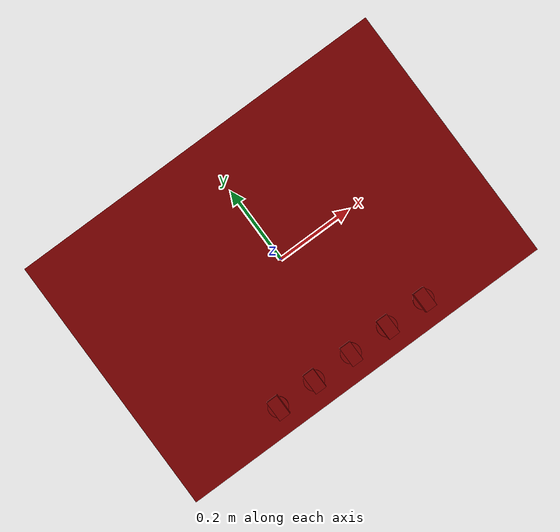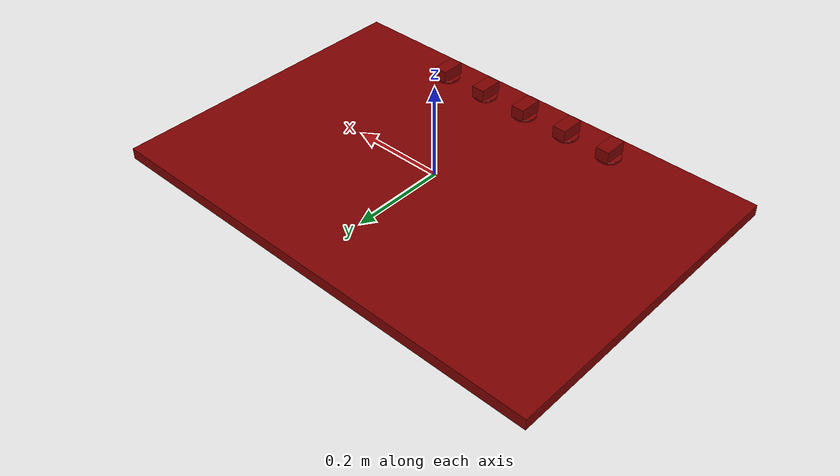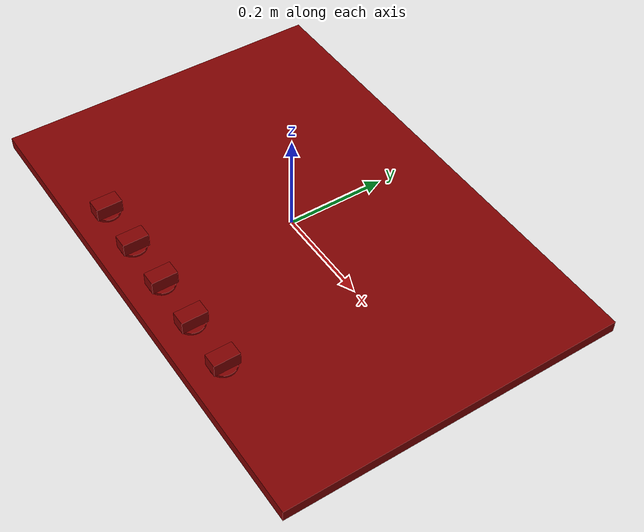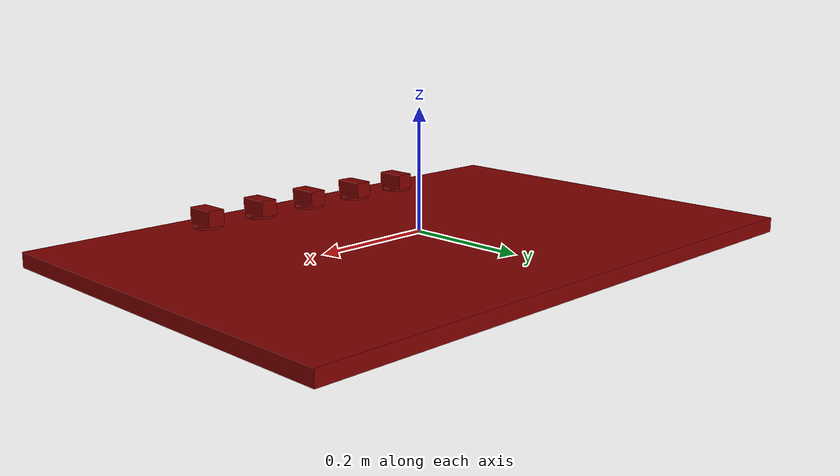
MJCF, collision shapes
<?xml version='1.0' encoding='UTF-8'?>
<mujoco model="model">
  <option timestep="0.002" gravity="0.0 0.0 -9.81"/>
  <compiler angle="radian"/>
  <asset>
    <mesh file="visuals/knob_center.obj" name="knob_center_vis"/>
    <mesh file="visuals/knob_front_left.obj" name="knob_front_left_vis"/>
    <mesh file="visuals/knob_front_right.obj" name="knob_front_right_vis"/>
    <mesh file="visuals/knob_rear_left.obj" name="knob_rear_left_vis"/>
    <mesh file="visuals/knob_rear_right.obj" name="knob_rear_right_vis"/>
    <mesh file="visuals/Body001.obj" name="Body001_vis"/>
    <texture file="visuals/T_BC001.png" name="Body001_material" type="2d"/>
    <material name="Body001_material" rgba="1 1 1 1.0" texture="Body001_material" shininess="0.141421377658844" specular="3"/>
    <texture file="visuals/T_BC001.png" name="knob_center_material" type="2d"/>
    <material name="knob_center_material" rgba="1 1 1 1.0" texture="knob_center_material" shininess="0.141421377658844" specular="0.3103448502657381"/>
    <texture file="visuals/T_BC001.png" name="knob_front_left_material" type="2d"/>
    <material name="knob_front_left_material" rgba="1 1 1 1.0" texture="knob_front_left_material" shininess="0.141421377658844" specular="0.3103448502657381"/>
    <texture file="visuals/T_BC001.png" name="knob_front_right_material" type="2d"/>
    <material name="knob_front_right_material" rgba="1 1 1 1.0" texture="knob_front_right_material" shininess="0.141421377658844" specular="0.3103448502657381"/>
    <texture file="visuals/T_BC001.png" name="knob_rear_left_material" type="2d"/>
    <material name="knob_rear_left_material" rgba="1 1 1 1.0" texture="knob_rear_left_material" shininess="0.141421377658844" specular="0.3103448502657381"/>
    <texture file="visuals/T_BC001.png" name="knob_rear_right_material" type="2d"/>
    <material name="knob_rear_right_material" rgba="1 1 1 1.0" texture="knob_rear_right_material" shininess="0.141421377658844" specular="0.3103448502657381"/>
  </asset>
  <default>
    <default class="visual">
      <geom conaffinity="0" contype="0" group="1" type="mesh"/>
    </default>
    <default class="collision">
      <geom group="0" rgba="0.5 0 0 0.5"/>
    </default>
    <default class="spawn">
      <geom group="0" rgba="1 1 1 0.5" contype="0" conaffinity="0"/>
      <site group="0" rgba="1 1 1 0.5"/>
    </default>
    <default class="region">
      <geom group="1" conaffinity="0" contype="0" rgba="0 1 0 0"/>
    </default>
  </default>
  <worldbody>
    <body>
      <body name="object">
        <geom mesh="Body001_vis" type="mesh" solimp="0.998 0.998 0.001" solref="0.001 1" friction="0.95 0.3 0.1" class="visual" material="Body001_material"/>
        <geom class="collision" type="box" pos="0.00045677696471102536 4.103407263755798e-06 -0.016107739880681038" size="0.5035321116447449 0.3431386351585388 0.012178044766187668" quat="1.0 0.0 0.0 0.0"/>
        <body name="knob_center">
          <joint axis="0.0 0.0 1.0" pos="0.0007578452932648361 -0.2764698565006256 0.006885664537549019" limited="true" name="knob_center_joint" range="0.0 3.141592653589793" type="hinge" damping="0.2" armature="0.01" frictionloss="1"/>
          <geom mesh="knob_center_vis" type="mesh" solimp="0.998 0.998 0.001" solref="0.001 1" friction="0.95 0.3 0.1" class="visual" material="knob_center_material"/>
          <geom class="collision" type="box" pos="0.0006744212005287409 -0.27661871910095215 0.014908572658896446" size="0.014874361455440521 0.026102233678102493 0.013480888679623604" quat="1.0 0.0 0.0 0.0" name="knob_center_main" friction="100 0.5 0.01"/>
          <geom class="collision" type="cylinder" pos="0.0009648771956562996 -0.2764875590801239 -0.0005518938414752483" size="0.02549481950700283 0.002379579236730933" quat="1.0 0.0 0.0 0.0" friction="100 0.5 0.01"/>
        </body>
        <body name="knob_front_left">
          <joint axis="0.0 0.0 1.0" pos="-0.21243718266487122 -0.2764698565006256 0.011849625036120415" limited="true" name="knob_front_left_joint" range="0.0 3.141592653589793" type="hinge" damping="0.2" armature="0.01" frictionloss="1"/>
          <geom mesh="knob_front_left_vis" type="mesh" solimp="0.998 0.998 0.001" solref="0.001 1" friction="0.95 0.3 0.1" class="visual" material="knob_front_left_material"/>
          <geom class="collision" type="box" pos="-0.2119937241077423 -0.27661871910095215 0.014908572658896446" size="0.014874360524117947 0.026102233678102493 0.013480888679623604" quat="1.0 0.0 0.0 0.0" name="knob_front_left_main" friction="100 0.5 0.01"/>
          <geom class="collision" type="cylinder" pos="-0.21255439519882202 -0.2764875590801239 -0.0005518938414752483" size="0.02549481950700283 0.002379579236730933" quat="1.0 0.0 0.0 0.0" friction="100 0.5 0.01"/>
        </body>
        <body name="knob_front_right">
          <joint axis="0.0 0.0 1.0" pos="0.21546348929405212 -0.2764698565006256 0.011849625036120415" limited="true" name="knob_front_right_joint" range="0.0 3.141592653589793" type="hinge" damping="0.2" armature="0.01" frictionloss="1"/>
          <geom mesh="knob_front_right_vis" type="mesh" solimp="0.998 0.998 0.001" solref="0.001 1" friction="0.95 0.3 0.1" class="visual" material="knob_front_right_material"/>
          <geom class="collision" type="box" pos="0.21526867151260376 -0.27661871910095215 0.01510857418179512" size="0.014874360524117947 0.026102233678102493 0.01328088715672493" quat="1.0 0.0 0.0 0.0" name="knob_front_right_main" friction="100 0.5 0.01"/>
          <geom class="collision" type="cylinder" pos="0.21547925472259521 -0.2764875590801239 -0.0005518938414752483" size="0.02549481764435768 0.002379579236730933" quat="1.0 0.0 0.0 0.0" friction="100 0.5 0.01"/>
        </body>
        <body name="knob_rear_left">
          <joint axis="0.0 0.0 1.0" pos="-0.1070111021399498 -0.2764698565006256 0.011849625036120415" limited="true" name="knob_rear_left_joint" range="0.0 3.141592653589793" type="hinge" damping="0.2" armature="0.01" frictionloss="1"/>
          <geom mesh="knob_rear_left_vis" type="mesh" solimp="0.998 0.998 0.001" solref="0.001 1" friction="0.95 0.3 0.1" class="visual" material="knob_rear_left_material"/>
          <geom class="collision" type="box" pos="-0.10674522817134857 -0.27661871910095215 0.014908572658896446" size="0.01487436331808567 0.026102233678102493 0.013480888679623604" quat="1.0 0.0 0.0 0.0" name="knob_rear_left_main" friction="100 0.5 0.01"/>
          <geom class="collision" type="cylinder" pos="-0.10709507018327713 -0.2764875590801239 -0.0005518938414752483" size="0.02549481950700283 0.002379579236730933" quat="1.0 0.0 0.0 0.0" friction="100 0.5 0.01"/>
        </body>
        <body name="knob_rear_right">
          <joint axis="0.0 0.0 1.0" pos="0.10765177011489868 -0.2764698565006256 0.011849625036120415" limited="true" name="knob_rear_right_joint" range="0.0 3.141592653589793" type="hinge" damping="0.2" armature="0.01" frictionloss="1"/>
          <geom mesh="knob_rear_right_vis" type="mesh" solimp="0.998 0.998 0.001" solref="0.001 1" friction="0.95 0.3 0.1" class="visual" material="knob_rear_right_material"/>
          <geom class="collision" type="box" pos="0.10764611512422562 -0.27661871910095215 0.014908572658896446" size="0.01487436331808567 0.026102233678102493 0.013480888679623604" quat="1.0 0.0 0.0 0.0" name="knob_rear_right_main" friction="100 0.5 0.01"/>
          <geom class="collision" type="cylinder" pos="0.10777219384908676 -0.2764875590801239 -0.0005518938414752483" size="0.02549481764435768 0.002379579236730933" quat="1.0 0.0 0.0 0.0" friction="100 0.5 0.01"/>
        </body>
        <site type="cylinder" rgba="0.5 0 0 0.5" size="0.10561677813529968 0.0001" pos="-0.3287530541419983 0.17598247528076172 -0.004161713644862175" name="burner_on_rear_left"/>
        <site type="cylinder" rgba="0.5 0 0 0.5" size="0.0826396569609642 0.0001" pos="-0.3287195563316345 -0.12007641047239304 -0.004164877813309431" name="burner_on_front_left"/>
        <site type="cylinder" rgba="0.5 0 0 0.5" size="0.12136893719434738 0.0001" pos="0.0011355309979990125 0.01031983271241188 -0.004162135999649763" name="burner_on_center"/>
        <site type="cylinder" rgba="0.5 0 0 0.5" size="0.0866013914346695 0.0001" pos="0.32859426736831665 0.17622607946395874 -0.0041677700355648994" name="burner_on_rear_right"/>
        <site type="cylinder" rgba="0.5 0 0 0.5" size="0.07480064034461975 0.0001" pos="0.3286627531051636 -0.1199866458773613 -0.004164023324847221" name="burner_on_front_right"/>
        <site name="burner_rear_left_place_site" type="cylinder" rgba="0.5 0 0 0" size="0.10561677813529968 4.999999873689376e-05" pos="-0.3287530541419983 0.17598247528076172 -0.004161713644862175"/>
        <site name="burner_front_left_place_site" type="cylinder" rgba="0.5 0 0 0" size="0.0826396569609642 4.999999873689376e-05" pos="-0.3287195563316345 -0.12007641047239304 -0.004164877813309431"/>
        <site name="burner_center_place_site" type="cylinder" rgba="0.5 0 0 0" size="0.12136893719434738 4.999999873689376e-05" pos="0.0011355309979990125 0.01031983271241188 -0.004162135999649763"/>
        <site name="burner_rear_right_place_site" type="cylinder" rgba="0.5 0 0 0" size="0.0866013914346695 5.0000002374872565e-05" pos="0.32859426736831665 0.17622607946395874 -0.0041677700355648994"/>
        <site name="burner_front_right_place_site" type="cylinder" rgba="0.5 0 0 0" size="0.07480064034461975 4.999999873689376e-05" pos="0.3286627531051636 -0.1199866458773613 -0.004164023324847221"/>
        <geom class="region" name="reg_main" type="box" pos="0.0 0.0 -0.01610773429274559" size="0.5047387609481812 0.34414581751823425 0.013178000994026662"/>
      </body>
    </body>
  </worldbody>
  <actuator>
    <motor name="knob_center_joint_actuator" joint="knob_center_joint" gear="10"/>
    <motor name="knob_front_left_joint_actuator" joint="knob_front_left_joint" gear="10"/>
    <motor name="knob_front_right_joint_actuator" joint="knob_front_right_joint" gear="10"/>
    <motor name="knob_rear_left_joint_actuator" joint="knob_rear_left_joint" gear="10"/>
    <motor name="knob_rear_right_joint_actuator" joint="knob_rear_right_joint" gear="10"/>
  </actuator>
</mujoco>
